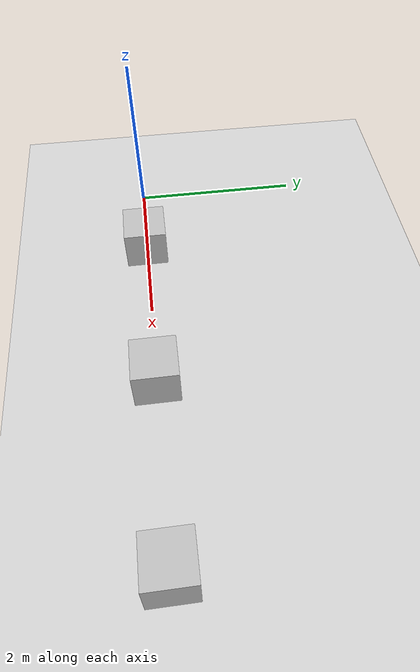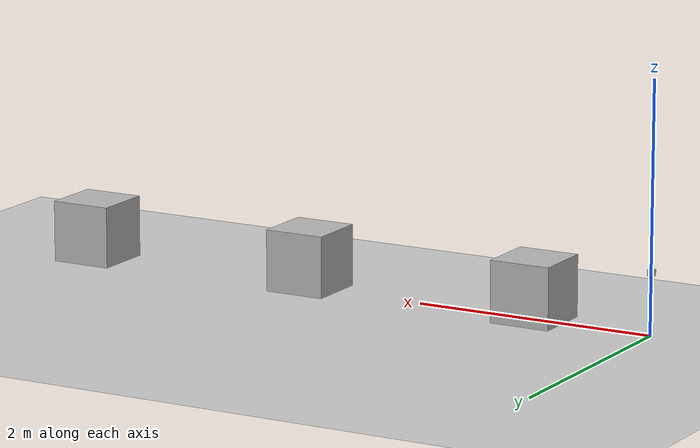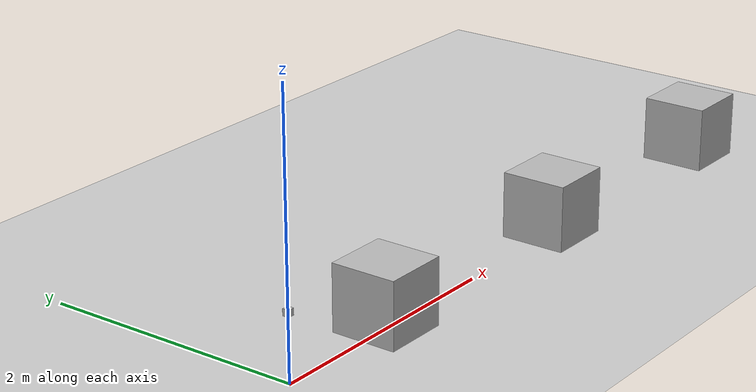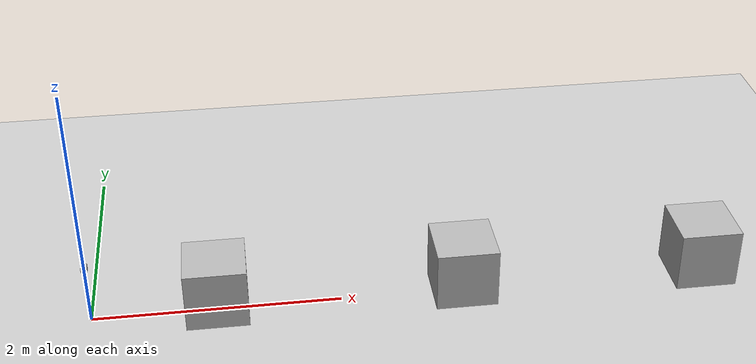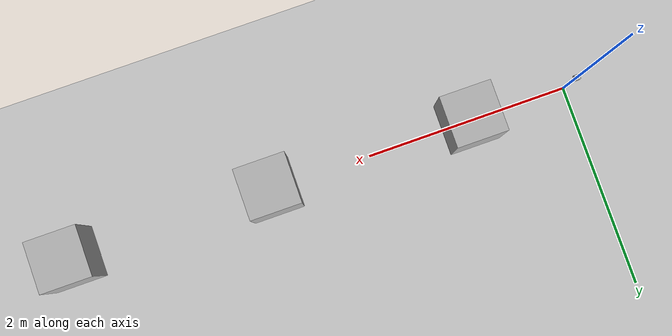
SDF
<?xml version="1.0" ?>
<sdf version="1.6">
  <world name="scenario_1_depth_test_world">

    <include>
      <uri>model://sun</uri>
    </include>

    <include>
      <uri>model://ground_plane</uri>
    </include>

    <physics type="ode">
      <max_step_size>0.001</max_step_size>
      <real_time_factor>1</real_time_factor>
      <real_time_update_rate>1000</real_time_update_rate>
    </physics>

    <!-- Модель виртуальной камеры с depth сенсором -->
    <model name="depth_camera_model">
        <pose>0 0 0.5 0 0 0</pose>
        <static>true</static>
        <link name="camera_link">
            <collision name="collision">
              <geometry><box><size>0.05 0.05 0.05</size></box></geometry>
            </collision>
            <visual name="visual">
               <geometry><box><size>0.05 0.05 0.05</size></box></geometry>
            </visual>
            <sensor name="depth_cam_sensor" type="depth">
                <camera name="depth_camera">
                    <horizontal_fov>1.3962634</horizontal_fov>
                    <image>
                      <width>1280</width>
                      <height>960</height>
                      <format>R8G8B8</format>
                    </image>
                    <clip>
                      <near>0.05</near>
                      <far>10.0</far>
                    </clip>
                    <noise>
                      <type>gaussian</type>
                      <mean>0.0</mean>
                      <stddev>0.005</stddev>
                    </noise>
                </camera>
                <plugin name="depth_camera_plugin" filename="libgazebo_ros_depth_camera.so">
                  <cameraName>depth_camera</cameraName>
                  <ros>
                    <namespace>/depth_camera</namespace>
                    <argument>image_raw:=image_raw</argument>
                    <argument>depth/image_raw:=depth/image_raw</argument>
                    <argument>points:=depth/points</argument>
                  </ros>
                  <frame_name>camera_depth_optical_frame</frame_name>
                  <optical_frame_id>camera_depth_optical_frame</optical_frame_id>
                  <update_rate>30</update_rate>
                </plugin>
            </sensor>
        </link>
    </model>

    <!-- Модели тестовых кубов на разных расстояниях -->
    <model name="test_cube_1m">
      <pose>1 0 0.25 0 0 0</pose>
      <static>true</static>
      <link name="link">
        <collision name="collision">
          <geometry>
            <box><size>0.5 0.5 0.5</size></box>
          </geometry>
        </collision>
        <visual name="visual">
          <geometry>
            <box><size>0.5 0.5 0.5</size></box>
          </geometry>
        </visual>
      </link>
    </model>

    <model name="test_cube_3m">
      <pose>3 0 0.25 0 0 0</pose>
      <static>true</static>
      <link name="link">
        <collision name="collision">
          <geometry>
            <box><size>0.5 0.5 0.5</size></box>
          </geometry>
        </collision>
        <visual name="visual">
          <geometry>
            <box><size>0.5 0.5 0.5</size></box>
          </geometry>
        </visual>
      </link>
    </model>

    <model name="test_cube_5m">
      <pose>5 0 0.25 0 0 0</pose>
      <static>true</static>
      <link name="link">
        <collision name="collision">
          <geometry>
            <box><size>0.5 0.5 0.5</size></box>
          </geometry>
        </collision>
        <visual name="visual">
          <geometry>
            <box><size>0.5 0.5 0.5</size></box>
          </geometry>
        </visual>
      </link>
    </model>

  </world>
</sdf>
